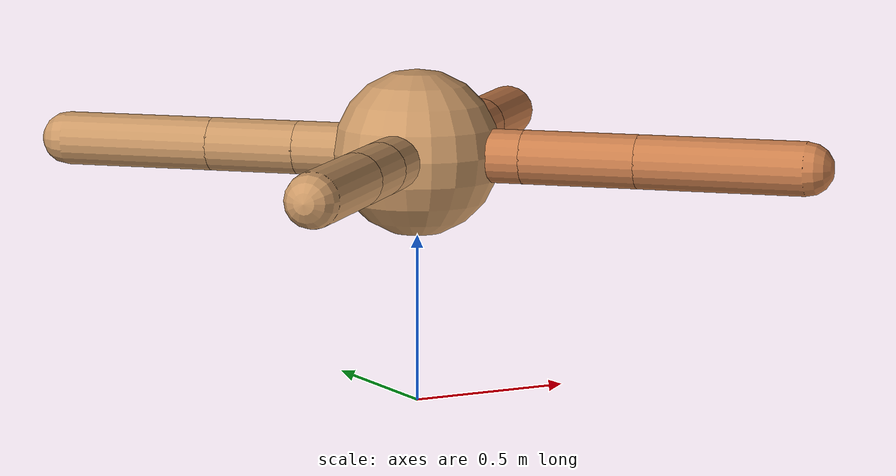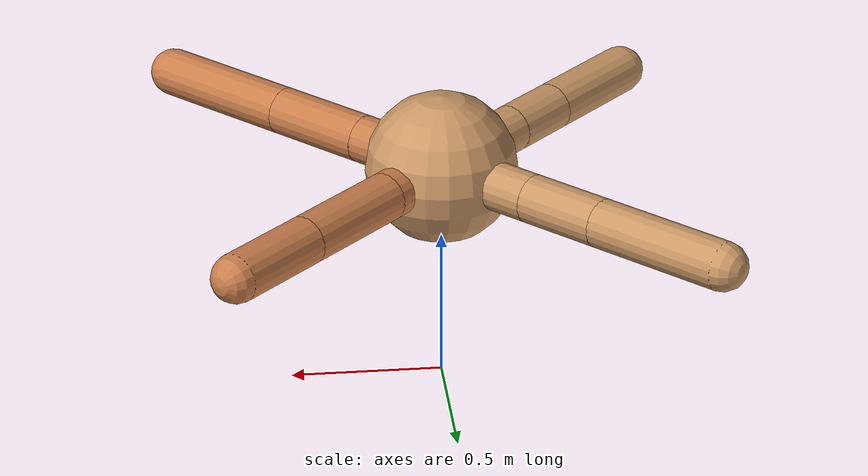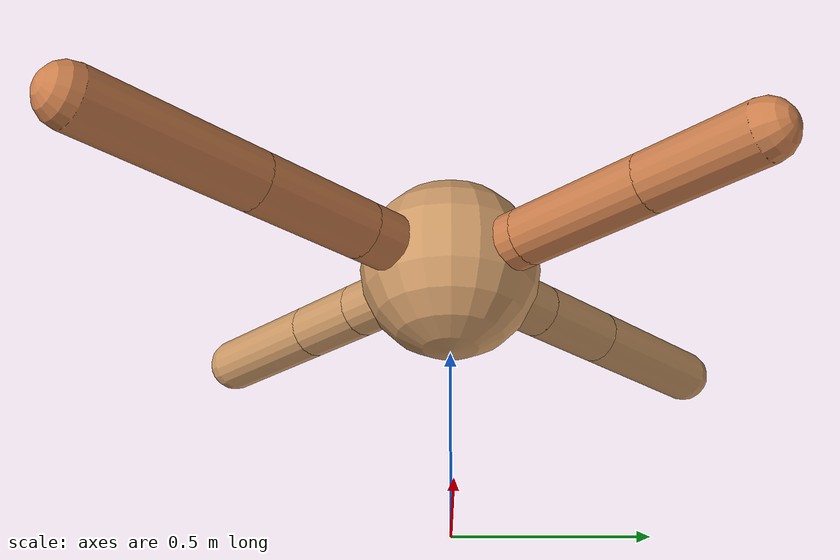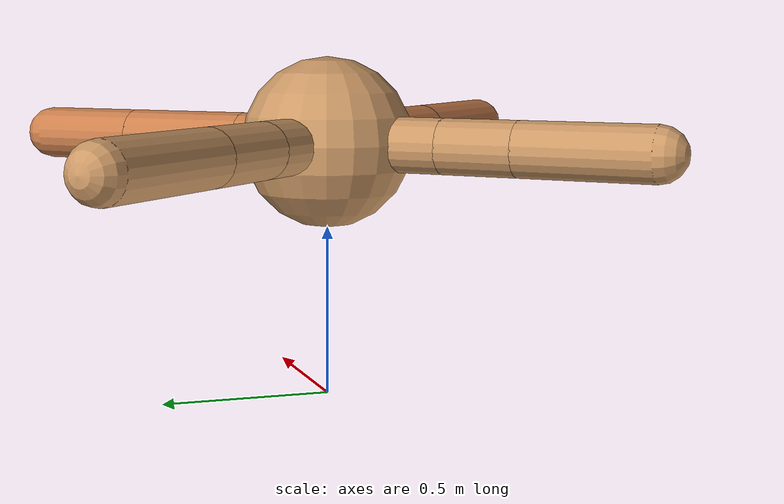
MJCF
<mujoco model="ant">
  <compiler angle="degree" coordinate="local" inertiafromgeom="true" />
  <option integrator="RK4" timestep="0.01" />
  <custom>
    <numeric data="0.0 0.0 0.55 1.0 0.0 0.0 0.0 0.0 1.0 0.0 -1.0 0.0 -1.0 0.0 1.0" name="init_qpos" />
  </custom>
  <default>
    <joint armature="1" damping="1" limited="true" />
    <geom conaffinity="0" condim="3" density="5.0" friction="1.5 0.1 0.1" margin="0.01" rgba="0.8 0.6 0.4 1" />
  </default>
  <worldbody>
    <body name="torso" pos="0 0 0.75">
      <geom name="torso_geom" pos="0 0 0" size="0.25" type="sphere" />

      <body name="front_left_leg" pos="0 0 0">
        <geom fromto="0.0 0.0 0.0 0.2 0.2 0.0" name="aux_1_geom" size="0.08" type="capsule" rgba=".8 .5 .3 1" />
        <body name="aux_1" pos="0.2 0.2 0.0">
          <joint axis="0 0 1" name="hip_1" pos="0.0 0.0 0.0" range="-40 40" type="hinge" />
          <geom fromto="0.0 0.0 0.0 0.2766333135308449 0.2766333135308449 0.0" name="left_leg_geom" size="0.08" type="capsule" rgba=".8 .5 .3 1" />
          <body pos="0.2766333135308449 0.2766333135308449 0.0" name="front_left_foot">
            <joint axis="-1 1 0" name="ankle_1" pos="0.0 0.0 0.0" range="30 100" type="hinge" />
            <geom fromto="0.0 0.0 0.0 0.22887800755751844 0.22887800755751844 0.0" name="left_ankle_geom" size="0.08" type="capsule" rgba=".8 .5 .3 1" />
          </body>
        </body>
      </body>
      <body name="front_right_leg" pos="0 0 0">
        <geom fromto="0.0 0.0 0.0 -0.2625037897360211 0.2625037897360211 0.0" name="aux_2_geom" size="0.08" type="capsule" />
        <body name="aux_2" pos="-0.2625037897360211 0.2625037897360211 0.0">
          <joint axis="0 0 1" name="hip_2" pos="0.0 0.0 0.0" range="-40 40" type="hinge" />
          <geom fromto="0.0 0.0 0.0 -0.19295410712417385 0.19295410712417385 0.0" name="right_leg_geom" size="0.08" type="capsule" />
          <body pos="-0.19295410712417385 0.19295410712417385 0.0" name="front_right_foot">
            <joint axis="1 1 0" name="ankle_2" pos="0.0 0.0 0.0" range="-100 -30" type="hinge" />
            <geom fromto="0.0 0.0 0.0 -0.3297132971380845 0.3297132971380845 0.0" name="right_ankle_geom" size="0.08" type="capsule" />
          </body>
        </body>
      </body>
      <body name="left_back_leg" pos="0 0 0">
        <geom fromto="0.0 0.0 0.0 -0.2600942034154305 -0.2600942034154305 0.0" name="aux_3_geom" size="0.08" type="capsule" />
        <body name="aux_3" pos="-0.2600942034154305 -0.2600942034154305 0.0">
          <joint axis="0 0 1" name="hip_3" pos="0.0 0.0 0.0" range="-40 40" type="hinge" />
          <geom fromto="0.0 0.0 0.0 -0.1570626813477008 -0.1570626813477008 0.0" name="back_leg_geom" size="0.08" type="capsule" />
          <body pos="-0.1570626813477008 -0.1570626813477008 0.0" name="left_back_foot">
            <joint axis="-1 1 0" name="ankle_3" pos="0.0 0.0 0.0" range="-100 -30" type="hinge" />
            <geom fromto="0.0 0.0 0.0 -0.2754467209830693 -0.2754467209830693 0.0" name="third_ankle_geom" size="0.08" type="capsule" />
          </body>
        </body>
      </body>
      <body name="right_back_leg" pos="0 0 0">
        <geom fromto="0.0 0.0 0.0 0.23326588980054247 -0.23326588980054247 0.0" name="aux_4_geom" size="0.08" type="capsule" rgba=".8 .5 .3 1" />
        <body name="aux_4" pos="0.23326588980054247 -0.23326588980054247 0.0">
          <joint axis="0 0 1" name="hip_4" pos="0.0 0.0 0.0" range="-40 40" type="hinge" />
          <geom fromto="0.0 0.0 0.0 0.24491747526179564 -0.24491747526179564 0.0" name="rightback_leg_geom" size="0.08" type="capsule" rgba=".8 .5 .3 1" />
          <body pos="0.24491747526179564 -0.24491747526179564 0.0" name="right_back_foot">
            <joint axis="1 1 0" name="ankle_4" pos="0.0 0.0 0.0" range="30 100" type="hinge" />
            <geom fromto="0.0 0.0 0.0 0.35508428051694 -0.35508428051694 0.0" name="fourth_ankle_geom" size="0.08" type="capsule" rgba=".8 .5 .3 1" />
          </body>
        </body>
      </body>
    </body>
  </worldbody>
  <actuator>
    <motor ctrllimited="true" ctrlrange="-1.0 1.0" joint="hip_4" gear="150" />
    <motor ctrllimited="true" ctrlrange="-1.0 1.0" joint="ankle_4" gear="150" />
    <motor ctrllimited="true" ctrlrange="-1.0 1.0" joint="hip_1" gear="150" />
    <motor ctrllimited="true" ctrlrange="-1.0 1.0" joint="ankle_1" gear="150" />
    <motor ctrllimited="true" ctrlrange="-1.0 1.0" joint="hip_2" gear="150" />
    <motor ctrllimited="true" ctrlrange="-1.0 1.0" joint="ankle_2" gear="150" />
    <motor ctrllimited="true" ctrlrange="-1.0 1.0" joint="hip_3" gear="150" />
    <motor ctrllimited="true" ctrlrange="-1.0 1.0" joint="ankle_3" gear="150" />
  </actuator>
</mujoco>
